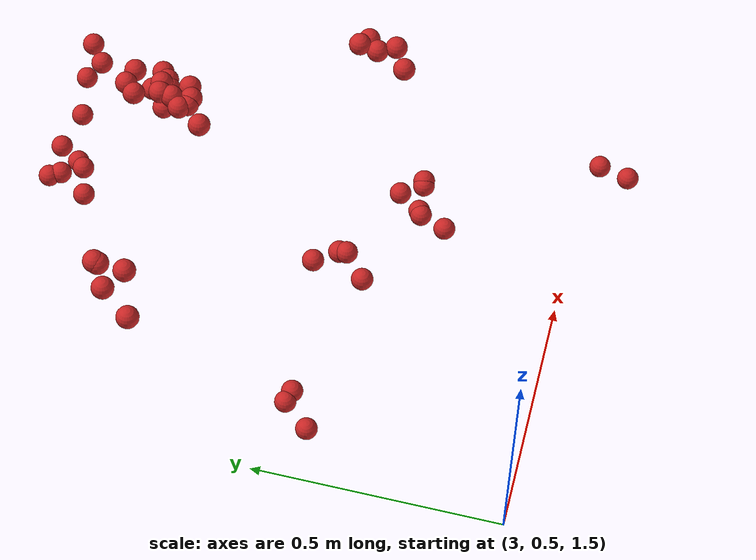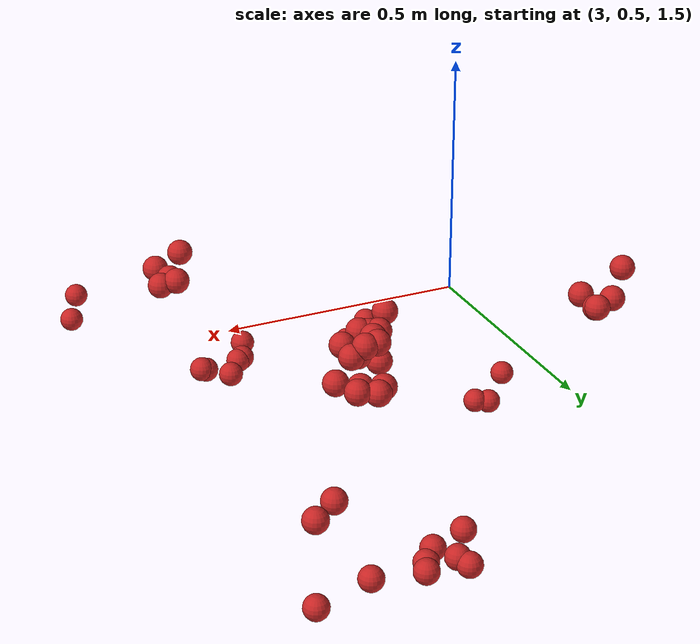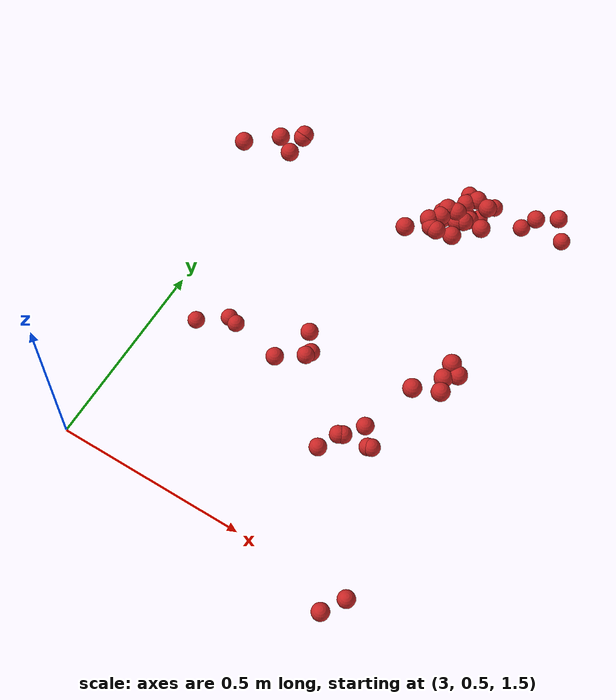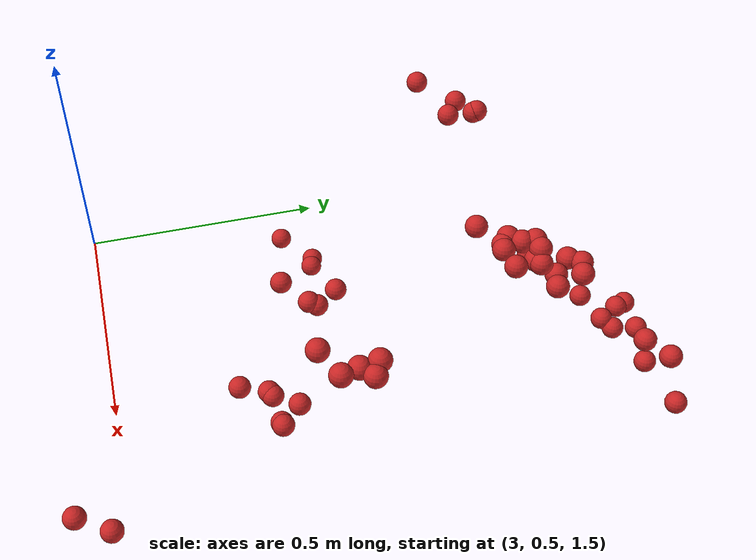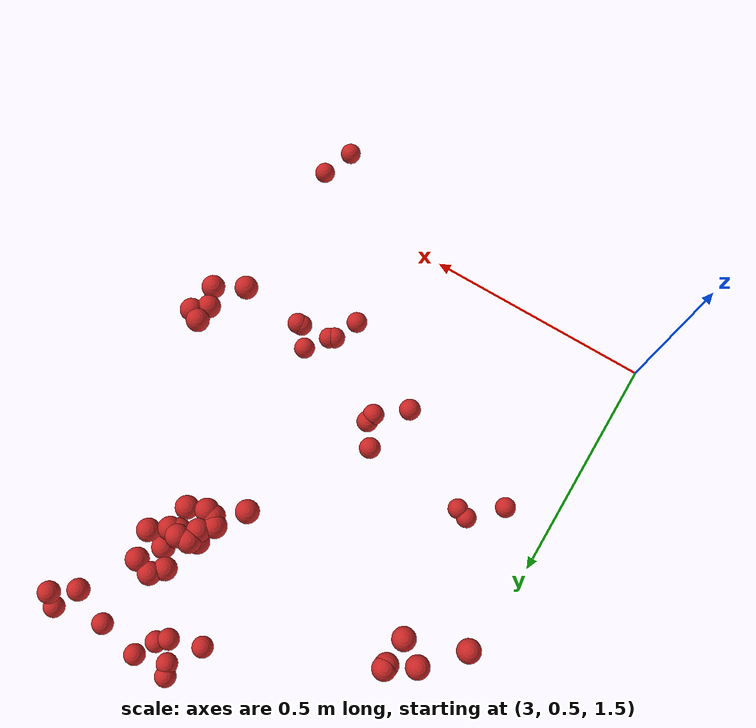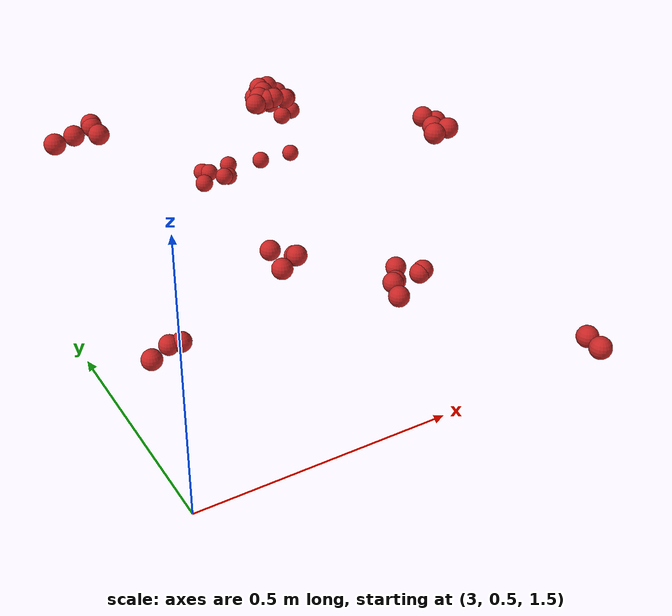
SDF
<sdf version="1.4">
 <model name="fruit_population">
  <static>true</static>
  <link name="fruit_17">
   <pose>3.5599760637592537 1.3184599635048513 1.8351153518897216 0 0 0</pose>
   <collision name="fruit_collision_17"><geometry><sphere><radius>0.022</radius></sphere></geometry></collision>
   <visual name="visual">
    <geometry><sphere><radius>0.022</radius></sphere></geometry>
    <material><script><name>Gazebo/Red</name></script></material>
   </visual>
   <inertial>
    <mass>0.05</mass>
    <inertia>
     <ixx>9.679999999999999e-06</ixx>
     <ixy>0.0</ixy>
     <ixz>0.0</ixz>
     <iyy>9.679999999999999e-06</iyy>
     <iyz>0.0</iyz>
     <izz>9.679999999999999e-06</izz>
    </inertia>
   </inertial>
   <sensor name="fruit_contact_17" type="contact">
    <plugin name="contact_plugin_17" filename="libcontact_plugin.so"/>
    <contact><collision>fruit_collision_17</collision><topic>fruit_contact_topic_17</topic></contact>
   </sensor>
  </link>
  <link name="fruit_27">
   <pose>3.1022276697385704 0.913973847272191 1.5187851328414521 0 0 0</pose>
   <collision name="fruit_collision_27"><geometry><sphere><radius>0.022</radius></sphere></geometry></collision>
   <visual name="visual">
    <geometry><sphere><radius>0.022</radius></sphere></geometry>
    <material><script><name>Gazebo/Red</name></script></material>
   </visual>
   <inertial>
    <mass>0.05</mass>
    <inertia>
     <ixx>9.679999999999999e-06</ixx>
     <ixy>0.0</ixy>
     <ixz>0.0</ixz>
     <iyy>9.679999999999999e-06</iyy>
     <iyz>0.0</iyz>
     <izz>9.679999999999999e-06</izz>
    </inertia>
   </inertial>
   <sensor name="fruit_contact_27" type="contact">
    <plugin name="contact_plugin_27" filename="libcontact_plugin.so"/>
    <contact><collision>fruit_collision_27</collision><topic>fruit_contact_topic_27</topic></contact>
   </sensor>
  </link>
  <link name="fruit_52">
   <pose>3.725238989129221 1.50672024667882 1.7184130196326435 0 0 0</pose>
   <collision name="fruit_collision_52"><geometry><sphere><radius>0.022</radius></sphere></geometry></collision>
   <visual name="visual">
    <geometry><sphere><radius>0.022</radius></sphere></geometry>
    <material><script><name>Gazebo/Red</name></script></material>
   </visual>
   <inertial>
    <mass>0.05</mass>
    <inertia>
     <ixx>9.679999999999999e-06</ixx>
     <ixy>0.0</ixy>
     <ixz>0.0</ixz>
     <iyy>9.679999999999999e-06</iyy>
     <iyz>0.0</iyz>
     <izz>9.679999999999999e-06</izz>
    </inertia>
   </inertial>
   <sensor name="fruit_contact_52" type="contact">
    <plugin name="contact_plugin_52" filename="libcontact_plugin.so"/>
    <contact><collision>fruit_collision_52</collision><topic>fruit_contact_topic_52</topic></contact>
   </sensor>
  </link>
  <link name="fruit_70">
   <pose>3.7349678941639186 0.8763590790599115 1.8763004661418001 0 0 0</pose>
   <collision name="fruit_collision_70"><geometry><sphere><radius>0.022</radius></sphere></geometry></collision>
   <visual name="visual">
    <geometry><sphere><radius>0.022</radius></sphere></geometry>
    <material><script><name>Gazebo/Red</name></script></material>
   </visual>
   <inertial>
    <mass>0.05</mass>
    <inertia>
     <ixx>9.679999999999999e-06</ixx>
     <ixy>0.0</ixy>
     <ixz>0.0</ixz>
     <iyy>9.679999999999999e-06</iyy>
     <iyz>0.0</iyz>
     <izz>9.679999999999999e-06</izz>
    </inertia>
   </inertial>
   <sensor name="fruit_contact_70" type="contact">
    <plugin name="contact_plugin_70" filename="libcontact_plugin.so"/>
    <contact><collision>fruit_collision_70</collision><topic>fruit_contact_topic_70</topic></contact>
   </sensor>
  </link>
  <link name="fruit_81">
   <pose>3.5073584684850196 1.229219751957037 1.8733460213204765 0 0 0</pose>
   <collision name="fruit_collision_81"><geometry><sphere><radius>0.022</radius></sphere></geometry></collision>
   <visual name="visual">
    <geometry><sphere><radius>0.022</radius></sphere></geometry>
    <material><script><name>Gazebo/Red</name></script></material>
   </visual>
   <inertial>
    <mass>0.05</mass>
    <inertia>
     <ixx>9.679999999999999e-06</ixx>
     <ixy>0.0</ixy>
     <ixz>0.0</ixz>
     <iyy>9.679999999999999e-06</iyy>
     <iyz>0.0</iyz>
     <izz>9.679999999999999e-06</izz>
    </inertia>
   </inertial>
   <sensor name="fruit_contact_81" type="contact">
    <plugin name="contact_plugin_81" filename="libcontact_plugin.so"/>
    <contact><collision>fruit_collision_81</collision><topic>fruit_contact_topic_81</topic></contact>
   </sensor>
  </link>
  <link name="fruit_103">
   <pose>3.6800370762477717 1.5466583099688562 1.5887252076262937 0 0 0</pose>
   <collision name="fruit_collision_103"><geometry><sphere><radius>0.022</radius></sphere></geometry></collision>
   <visual name="visual">
    <geometry><sphere><radius>0.022</radius></sphere></geometry>
    <material><script><name>Gazebo/Red</name></script></material>
   </visual>
   <inertial>
    <mass>0.05</mass>
    <inertia>
     <ixx>9.679999999999999e-06</ixx>
     <ixy>0.0</ixy>
     <ixz>0.0</ixz>
     <iyy>9.679999999999999e-06</iyy>
     <iyz>0.0</iyz>
     <izz>9.679999999999999e-06</izz>
    </inertia>
   </inertial>
   <sensor name="fruit_contact_103" type="contact">
    <plugin name="contact_plugin_103" filename="libcontact_plugin.so"/>
    <contact><collision>fruit_collision_103</collision><topic>fruit_contact_topic_103</topic></contact>
   </sensor>
  </link>
  <link name="fruit_105">
   <pose>3.7876365757614896 0.4128293330826816 1.5995284361854956 0 0 0</pose>
   <collision name="fruit_collision_105"><geometry><sphere><radius>0.022</radius></sphere></geometry></collision>
   <visual name="visual">
    <geometry><sphere><radius>0.022</radius></sphere></geometry>
    <material><script><name>Gazebo/Red</name></script></material>
   </visual>
   <inertial>
    <mass>0.05</mass>
    <inertia>
     <ixx>9.679999999999999e-06</ixx>
     <ixy>0.0</ixy>
     <ixz>0.0</ixz>
     <iyy>9.679999999999999e-06</iyy>
     <iyz>0.0</iyz>
     <izz>9.679999999999999e-06</izz>
    </inertia>
   </inertial>
   <sensor name="fruit_contact_105" type="contact">
    <plugin name="contact_plugin_105" filename="libcontact_plugin.so"/>
    <contact><collision>fruit_collision_105</collision><topic>fruit_contact_topic_105</topic></contact>
   </sensor>
  </link>
  <link name="fruit_106">
   <pose>3.5697741032733226 0.7480428157700884 1.6052648496955708 0 0 0</pose>
   <collision name="fruit_collision_106"><geometry><sphere><radius>0.022</radius></sphere></geometry></collision>
   <visual name="visual">
    <geometry><sphere><radius>0.022</radius></sphere></geometry>
    <material><script><name>Gazebo/Red</name></script></material>
   </visual>
   <inertial>
    <mass>0.05</mass>
    <inertia>
     <ixx>9.679999999999999e-06</ixx>
     <ixy>0.0</ixy>
     <ixz>0.0</ixz>
     <iyy>9.679999999999999e-06</iyy>
     <iyz>0.0</iyz>
     <izz>9.679999999999999e-06</izz>
    </inertia>
   </inertial>
   <sensor name="fruit_contact_106" type="contact">
    <plugin name="contact_plugin_106" filename="libcontact_plugin.so"/>
    <contact><collision>fruit_collision_106</collision><topic>fruit_contact_topic_106</topic></contact>
   </sensor>
  </link>
  <link name="fruit_109">
   <pose>3.3717302902737893 0.8701834800736336 1.6660403232979073 0 0 0</pose>
   <collision name="fruit_collision_109"><geometry><sphere><radius>0.022</radius></sphere></geometry></collision>
   <visual name="visual">
    <geometry><sphere><radius>0.022</radius></sphere></geometry>
    <material><script><name>Gazebo/Red</name></script></material>
   </visual>
   <inertial>
    <mass>0.05</mass>
    <inertia>
     <ixx>9.679999999999999e-06</ixx>
     <ixy>0.0</ixy>
     <ixz>0.0</ixz>
     <iyy>9.679999999999999e-06</iyy>
     <iyz>0.0</iyz>
     <izz>9.679999999999999e-06</izz>
    </inertia>
   </inertial>
   <sensor name="fruit_contact_109" type="contact">
    <plugin name="contact_plugin_109" filename="libcontact_plugin.so"/>
    <contact><collision>fruit_collision_109</collision><topic>fruit_contact_topic_109</topic></contact>
   </sensor>
  </link>
  <link name="fruit_113">
   <pose>3.4845235315363476 1.4815124395063197 1.5905172096511941 0 0 0</pose>
   <collision name="fruit_collision_113"><geometry><sphere><radius>0.022</radius></sphere></geometry></collision>
   <visual name="visual">
    <geometry><sphere><radius>0.022</radius></sphere></geometry>
    <material><script><name>Gazebo/Red</name></script></material>
   </visual>
   <inertial>
    <mass>0.05</mass>
    <inertia>
     <ixx>9.679999999999999e-06</ixx>
     <ixy>0.0</ixy>
     <ixz>0.0</ixz>
     <iyy>9.679999999999999e-06</iyy>
     <iyz>0.0</iyz>
     <izz>9.679999999999999e-06</izz>
    </inertia>
   </inertial>
   <sensor name="fruit_contact_113" type="contact">
    <plugin name="contact_plugin_113" filename="libcontact_plugin.so"/>
    <contact><collision>fruit_collision_113</collision><topic>fruit_contact_topic_113</topic></contact>
   </sensor>
  </link>
  <link name="fruit_155">
   <pose>3.0545938482336963 1.2349758930662846 1.8683440989289972 0 0 0</pose>
   <collision name="fruit_collision_155"><geometry><sphere><radius>0.022</radius></sphere></geometry></collision>
   <visual name="visual">
    <geometry><sphere><radius>0.022</radius></sphere></geometry>
    <material><script><name>Gazebo/Red</name></script></material>
   </visual>
   <inertial>
    <mass>0.05</mass>
    <inertia>
     <ixx>9.679999999999999e-06</ixx>
     <ixy>0.0</ixy>
     <ixz>0.0</ixz>
     <iyy>9.679999999999999e-06</iyy>
     <iyz>0.0</iyz>
     <izz>9.679999999999999e-06</izz>
    </inertia>
   </inertial>
   <sensor name="fruit_contact_155" type="contact">
    <plugin name="contact_plugin_155" filename="libcontact_plugin.so"/>
    <contact><collision>fruit_collision_155</collision><topic>fruit_contact_topic_155</topic></contact>
   </sensor>
  </link>
  <link name="fruit_186">
   <pose>3.6114209723589754 1.3573839148122655 1.8182603337929268 0 0 0</pose>
   <collision name="fruit_collision_186"><geometry><sphere><radius>0.022</radius></sphere></geometry></collision>
   <visual name="visual">
    <geometry><sphere><radius>0.022</radius></sphere></geometry>
    <material><script><name>Gazebo/Red</name></script></material>
   </visual>
   <inertial>
    <mass>0.05</mass>
    <inertia>
     <ixx>9.679999999999999e-06</ixx>
     <ixy>0.0</ixy>
     <ixz>0.0</ixz>
     <iyy>9.679999999999999e-06</iyy>
     <iyz>0.0</iyz>
     <izz>9.679999999999999e-06</izz>
    </inertia>
   </inertial>
   <sensor name="fruit_contact_186" type="contact">
    <plugin name="contact_plugin_186" filename="libcontact_plugin.so"/>
    <contact><collision>fruit_collision_186</collision><topic>fruit_contact_topic_186</topic></contact>
   </sensor>
  </link>
  <link name="fruit_228">
   <pose>3.6356028747627205 0.8539809406461127 1.6034993978267298 0 0 0</pose>
   <collision name="fruit_collision_228"><geometry><sphere><radius>0.022</radius></sphere></geometry></collision>
   <visual name="visual">
    <geometry><sphere><radius>0.022</radius></sphere></geometry>
    <material><script><name>Gazebo/Red</name></script></material>
   </visual>
   <inertial>
    <mass>0.05</mass>
    <inertia>
     <ixx>9.679999999999999e-06</ixx>
     <ixy>0.0</ixy>
     <ixz>0.0</ixz>
     <iyy>9.679999999999999e-06</iyy>
     <iyz>0.0</iyz>
     <izz>9.679999999999999e-06</izz>
    </inertia>
   </inertial>
   <sensor name="fruit_contact_228" type="contact">
    <plugin name="contact_plugin_228" filename="libcontact_plugin.so"/>
    <contact><collision>fruit_collision_228</collision><topic>fruit_contact_topic_228</topic></contact>
   </sensor>
  </link>
  <link name="fruit_247">
   <pose>3.5276375451452457 1.5446756215681081 1.586942484007275 0 0 0</pose>
   <collision name="fruit_collision_247"><geometry><sphere><radius>0.022</radius></sphere></geometry></collision>
   <visual name="visual">
    <geometry><sphere><radius>0.022</radius></sphere></geometry>
    <material><script><name>Gazebo/Red</name></script></material>
   </visual>
   <inertial>
    <mass>0.05</mass>
    <inertia>
     <ixx>9.679999999999999e-06</ixx>
     <ixy>0.0</ixy>
     <ixz>0.0</ixz>
     <iyy>9.679999999999999e-06</iyy>
     <iyz>0.0</iyz>
     <izz>9.679999999999999e-06</izz>
    </inertia>
   </inertial>
   <sensor name="fruit_contact_247" type="contact">
    <plugin name="contact_plugin_247" filename="libcontact_plugin.so"/>
    <contact><collision>fruit_collision_247</collision><topic>fruit_contact_topic_247</topic></contact>
   </sensor>
  </link>
  <link name="fruit_283">
   <pose>3.551066597485708 1.5040047193821826 1.5863158389191552 0 0 0</pose>
   <collision name="fruit_collision_283"><geometry><sphere><radius>0.022</radius></sphere></geometry></collision>
   <visual name="visual">
    <geometry><sphere><radius>0.022</radius></sphere></geometry>
    <material><script><name>Gazebo/Red</name></script></material>
   </visual>
   <inertial>
    <mass>0.05</mass>
    <inertia>
     <ixx>9.679999999999999e-06</ixx>
     <ixy>0.0</ixy>
     <ixz>0.0</ixz>
     <iyy>9.679999999999999e-06</iyy>
     <iyz>0.0</iyz>
     <izz>9.679999999999999e-06</izz>
    </inertia>
   </inertial>
   <sensor name="fruit_contact_283" type="contact">
    <plugin name="contact_plugin_283" filename="libcontact_plugin.so"/>
    <contact><collision>fruit_collision_283</collision><topic>fruit_contact_topic_283</topic></contact>
   </sensor>
  </link>
  <link name="fruit_293">
   <pose>3.604189467120068 1.4092340049424084 1.8306000198759065 0 0 0</pose>
   <collision name="fruit_collision_293"><geometry><sphere><radius>0.022</radius></sphere></geometry></collision>
   <visual name="visual">
    <geometry><sphere><radius>0.022</radius></sphere></geometry>
    <material><script><name>Gazebo/Red</name></script></material>
   </visual>
   <inertial>
    <mass>0.05</mass>
    <inertia>
     <ixx>9.679999999999999e-06</ixx>
     <ixy>0.0</ixy>
     <ixz>0.0</ixz>
     <iyy>9.679999999999999e-06</iyy>
     <iyz>0.0</iyz>
     <izz>9.679999999999999e-06</izz>
    </inertia>
   </inertial>
   <sensor name="fruit_contact_293" type="contact">
    <plugin name="contact_plugin_293" filename="libcontact_plugin.so"/>
    <contact><collision>fruit_collision_293</collision><topic>fruit_contact_topic_293</topic></contact>
   </sensor>
  </link>
  <link name="fruit_323">
   <pose>3.7713344247243907 1.5397559075399314 1.714170472555333 0 0 0</pose>
   <collision name="fruit_collision_323"><geometry><sphere><radius>0.022</radius></sphere></geometry></collision>
   <visual name="visual">
    <geometry><sphere><radius>0.022</radius></sphere></geometry>
    <material><script><name>Gazebo/Red</name></script></material>
   </visual>
   <inertial>
    <mass>0.05</mass>
    <inertia>
     <ixx>9.679999999999999e-06</ixx>
     <ixy>0.0</ixy>
     <ixz>0.0</ixz>
     <iyy>9.679999999999999e-06</iyy>
     <iyz>0.0</iyz>
     <izz>9.679999999999999e-06</izz>
    </inertia>
   </inertial>
   <sensor name="fruit_contact_323" type="contact">
    <plugin name="contact_plugin_323" filename="libcontact_plugin.so"/>
    <contact><collision>fruit_collision_323</collision><topic>fruit_contact_topic_323</topic></contact>
   </sensor>
  </link>
  <link name="fruit_334">
   <pose>3.6068218401383074 1.2768310443820712 1.8543630950863275 0 0 0</pose>
   <collision name="fruit_collision_334"><geometry><sphere><radius>0.022</radius></sphere></geometry></collision>
   <visual name="visual">
    <geometry><sphere><radius>0.022</radius></sphere></geometry>
    <material><script><name>Gazebo/Red</name></script></material>
   </visual>
   <inertial>
    <mass>0.05</mass>
    <inertia>
     <ixx>9.679999999999999e-06</ixx>
     <ixy>0.0</ixy>
     <ixz>0.0</ixz>
     <iyy>9.679999999999999e-06</iyy>
     <iyz>0.0</iyz>
     <izz>9.679999999999999e-06</izz>
    </inertia>
   </inertial>
   <sensor name="fruit_contact_334" type="contact">
    <plugin name="contact_plugin_334" filename="libcontact_plugin.so"/>
    <contact><collision>fruit_collision_334</collision><topic>fruit_contact_topic_334</topic></contact>
   </sensor>
  </link>
  <link name="fruit_361">
   <pose>3.667992396248071 0.812668866453949 1.5997302410704692 0 0 0</pose>
   <collision name="fruit_collision_361"><geometry><sphere><radius>0.022</radius></sphere></geometry></collision>
   <visual name="visual">
    <geometry><sphere><radius>0.022</radius></sphere></geometry>
    <material><script><name>Gazebo/Red</name></script></material>
   </visual>
   <inertial>
    <mass>0.05</mass>
    <inertia>
     <ixx>9.679999999999999e-06</ixx>
     <ixy>0.0</ixy>
     <ixz>0.0</ixz>
     <iyy>9.679999999999999e-06</iyy>
     <iyz>0.0</iyz>
     <izz>9.679999999999999e-06</izz>
    </inertia>
   </inertial>
   <sensor name="fruit_contact_361" type="contact">
    <plugin name="contact_plugin_361" filename="libcontact_plugin.so"/>
    <contact><collision>fruit_collision_361</collision><topic>fruit_contact_topic_361</topic></contact>
   </sensor>
  </link>
  <link name="fruit_414">
   <pose>3.784191516122022 1.5704074554547767 1.579309321135757 0 0 0</pose>
   <collision name="fruit_collision_414"><geometry><sphere><radius>0.022</radius></sphere></geometry></collision>
   <visual name="visual">
    <geometry><sphere><radius>0.022</radius></sphere></geometry>
    <material><script><name>Gazebo/Red</name></script></material>
   </visual>
   <inertial>
    <mass>0.05</mass>
    <inertia>
     <ixx>9.679999999999999e-06</ixx>
     <ixy>0.0</ixy>
     <ixz>0.0</ixz>
     <iyy>9.679999999999999e-06</iyy>
     <iyz>0.0</iyz>
     <izz>9.679999999999999e-06</izz>
    </inertia>
   </inertial>
   <sensor name="fruit_contact_414" type="contact">
    <plugin name="contact_plugin_414" filename="libcontact_plugin.so"/>
    <contact><collision>fruit_collision_414</collision><topic>fruit_contact_topic_414</topic></contact>
   </sensor>
  </link>
  <link name="fruit_421">
   <pose>3.649623285609672 1.346015057716625 1.8277048553113193 0 0 0</pose>
   <collision name="fruit_collision_421"><geometry><sphere><radius>0.022</radius></sphere></geometry></collision>
   <visual name="visual">
    <geometry><sphere><radius>0.022</radius></sphere></geometry>
    <material><script><name>Gazebo/Red</name></script></material>
   </visual>
   <inertial>
    <mass>0.05</mass>
    <inertia>
     <ixx>9.679999999999999e-06</ixx>
     <ixy>0.0</ixy>
     <ixz>0.0</ixz>
     <iyy>9.679999999999999e-06</iyy>
     <iyz>0.0</iyz>
     <izz>9.679999999999999e-06</izz>
    </inertia>
   </inertial>
   <sensor name="fruit_contact_421" type="contact">
    <plugin name="contact_plugin_421" filename="libcontact_plugin.so"/>
    <contact><collision>fruit_collision_421</collision><topic>fruit_contact_topic_421</topic></contact>
   </sensor>
  </link>
  <link name="fruit_445">
   <pose>3.6770091650036423 0.8142305655308208 1.6034793310609414 0 0 0</pose>
   <collision name="fruit_collision_445"><geometry><sphere><radius>0.022</radius></sphere></geometry></collision>
   <visual name="visual">
    <geometry><sphere><radius>0.022</radius></sphere></geometry>
    <material><script><name>Gazebo/Red</name></script></material>
   </visual>
   <inertial>
    <mass>0.05</mass>
    <inertia>
     <ixx>9.679999999999999e-06</ixx>
     <ixy>0.0</ixy>
     <ixz>0.0</ixz>
     <iyy>9.679999999999999e-06</iyy>
     <iyz>0.0</iyz>
     <izz>9.679999999999999e-06</izz>
    </inertia>
   </inertial>
   <sensor name="fruit_contact_445" type="contact">
    <plugin name="contact_plugin_445" filename="libcontact_plugin.so"/>
    <contact><collision>fruit_collision_445</collision><topic>fruit_contact_topic_445</topic></contact>
   </sensor>
  </link>
  <link name="fruit_448">
   <pose>3.1151986208741205 1.303097820275522 1.8517305223095086 0 0 0</pose>
   <collision name="fruit_collision_448"><geometry><sphere><radius>0.022</radius></sphere></geometry></collision>
   <visual name="visual">
    <geometry><sphere><radius>0.022</radius></sphere></geometry>
    <material><script><name>Gazebo/Red</name></script></material>
   </visual>
   <inertial>
    <mass>0.05</mass>
    <inertia>
     <ixx>9.679999999999999e-06</ixx>
     <ixy>0.0</ixy>
     <ixz>0.0</ixz>
     <iyy>9.679999999999999e-06</iyy>
     <iyz>0.0</iyz>
     <izz>9.679999999999999e-06</izz>
    </inertia>
   </inertial>
   <sensor name="fruit_contact_448" type="contact">
    <plugin name="contact_plugin_448" filename="libcontact_plugin.so"/>
    <contact><collision>fruit_collision_448</collision><topic>fruit_contact_topic_448</topic></contact>
   </sensor>
  </link>
  <link name="fruit_455">
   <pose>3.159608827060697 1.2743550607850016 1.8552459751163966 0 0 0</pose>
   <collision name="fruit_collision_455"><geometry><sphere><radius>0.022</radius></sphere></geometry></collision>
   <visual name="visual">
    <geometry><sphere><radius>0.022</radius></sphere></geometry>
    <material><script><name>Gazebo/Red</name></script></material>
   </visual>
   <inertial>
    <mass>0.05</mass>
    <inertia>
     <ixx>9.679999999999999e-06</ixx>
     <ixy>0.0</ixy>
     <ixz>0.0</ixz>
     <iyy>9.679999999999999e-06</iyy>
     <iyz>0.0</iyz>
     <izz>9.679999999999999e-06</izz>
    </inertia>
   </inertial>
   <sensor name="fruit_contact_455" type="contact">
    <plugin name="contact_plugin_455" filename="libcontact_plugin.so"/>
    <contact><collision>fruit_collision_455</collision><topic>fruit_contact_topic_455</topic></contact>
   </sensor>
  </link>
  <link name="fruit_458">
   <pose>3.1638761831982536 1.334597465514478 1.858198930373571 0 0 0</pose>
   <collision name="fruit_collision_458"><geometry><sphere><radius>0.022</radius></sphere></geometry></collision>
   <visual name="visual">
    <geometry><sphere><radius>0.022</radius></sphere></geometry>
    <material><script><name>Gazebo/Red</name></script></material>
   </visual>
   <inertial>
    <mass>0.05</mass>
    <inertia>
     <ixx>9.679999999999999e-06</ixx>
     <ixy>0.0</ixy>
     <ixz>0.0</ixz>
     <iyy>9.679999999999999e-06</iyy>
     <iyz>0.0</iyz>
     <izz>9.679999999999999e-06</izz>
    </inertia>
   </inertial>
   <sensor name="fruit_contact_458" type="contact">
    <plugin name="contact_plugin_458" filename="libcontact_plugin.so"/>
    <contact><collision>fruit_collision_458</collision><topic>fruit_contact_topic_458</topic></contact>
   </sensor>
  </link>
  <link name="fruit_462">
   <pose>3.7785061209823945 0.9762588243946789 1.8728364336009846 0 0 0</pose>
   <collision name="fruit_collision_462"><geometry><sphere><radius>0.022</radius></sphere></geometry></collision>
   <visual name="visual">
    <geometry><sphere><radius>0.022</radius></sphere></geometry>
    <material><script><name>Gazebo/Red</name></script></material>
   </visual>
   <inertial>
    <mass>0.05</mass>
    <inertia>
     <ixx>9.679999999999999e-06</ixx>
     <ixy>0.0</ixy>
     <ixz>0.0</ixz>
     <iyy>9.679999999999999e-06</iyy>
     <iyz>0.0</iyz>
     <izz>9.679999999999999e-06</izz>
    </inertia>
   </inertial>
   <sensor name="fruit_contact_462" type="contact">
    <plugin name="contact_plugin_462" filename="libcontact_plugin.so"/>
    <contact><collision>fruit_collision_462</collision><topic>fruit_contact_topic_462</topic></contact>
   </sensor>
  </link>
  <link name="fruit_463">
   <pose>3.5666861155028062 1.3260287577742798 1.873310350395646 0 0 0</pose>
   <collision name="fruit_collision_463"><geometry><sphere><radius>0.022</radius></sphere></geometry></collision>
   <visual name="visual">
    <geometry><sphere><radius>0.022</radius></sphere></geometry>
    <material><script><name>Gazebo/Red</name></script></material>
   </visual>
   <inertial>
    <mass>0.05</mass>
    <inertia>
     <ixx>9.679999999999999e-06</ixx>
     <ixy>0.0</ixy>
     <ixz>0.0</ixz>
     <iyy>9.679999999999999e-06</iyy>
     <iyz>0.0</iyz>
     <izz>9.679999999999999e-06</izz>
    </inertia>
   </inertial>
   <sensor name="fruit_contact_463" type="contact">
    <plugin name="contact_plugin_463" filename="libcontact_plugin.so"/>
    <contact><collision>fruit_collision_463</collision><topic>fruit_contact_topic_463</topic></contact>
   </sensor>
  </link>
  <link name="fruit_480">
   <pose>3.791070881238205 0.9048251055536218 1.8681193417988038 0 0 0</pose>
   <collision name="fruit_collision_480"><geometry><sphere><radius>0.022</radius></sphere></geometry></collision>
   <visual name="visual">
    <geometry><sphere><radius>0.022</radius></sphere></geometry>
    <material><script><name>Gazebo/Red</name></script></material>
   </visual>
   <inertial>
    <mass>0.05</mass>
    <inertia>
     <ixx>9.679999999999999e-06</ixx>
     <ixy>0.0</ixy>
     <ixz>0.0</ixz>
     <iyy>9.679999999999999e-06</iyy>
     <iyz>0.0</iyz>
     <izz>9.679999999999999e-06</izz>
    </inertia>
   </inertial>
   <sensor name="fruit_contact_480" type="contact">
    <plugin name="contact_plugin_480" filename="libcontact_plugin.so"/>
    <contact><collision>fruit_collision_480</collision><topic>fruit_contact_topic_480</topic></contact>
   </sensor>
  </link>
  <link name="fruit_482">
   <pose>3.6117423054502718 1.3239982511285553 1.8559224730060242 0 0 0</pose>
   <collision name="fruit_collision_482"><geometry><sphere><radius>0.022</radius></sphere></geometry></collision>
   <visual name="visual">
    <geometry><sphere><radius>0.022</radius></sphere></geometry>
    <material><script><name>Gazebo/Red</name></script></material>
   </visual>
   <inertial>
    <mass>0.05</mass>
    <inertia>
     <ixx>9.679999999999999e-06</ixx>
     <ixy>0.0</ixy>
     <ixz>0.0</ixz>
     <iyy>9.679999999999999e-06</iyy>
     <iyz>0.0</iyz>
     <izz>9.679999999999999e-06</izz>
    </inertia>
   </inertial>
   <sensor name="fruit_contact_482" type="contact">
    <plugin name="contact_plugin_482" filename="libcontact_plugin.so"/>
    <contact><collision>fruit_collision_482</collision><topic>fruit_contact_topic_482</topic></contact>
   </sensor>
  </link>
  <link name="fruit_491">
   <pose>3.5896866848413365 1.328772148046778 1.872739203909709 0 0 0</pose>
   <collision name="fruit_collision_491"><geometry><sphere><radius>0.022</radius></sphere></geometry></collision>
   <visual name="visual">
    <geometry><sphere><radius>0.022</radius></sphere></geometry>
    <material><script><name>Gazebo/Red</name></script></material>
   </visual>
   <inertial>
    <mass>0.05</mass>
    <inertia>
     <ixx>9.679999999999999e-06</ixx>
     <ixy>0.0</ixy>
     <ixz>0.0</ixz>
     <iyy>9.679999999999999e-06</iyy>
     <iyz>0.0</iyz>
     <izz>9.679999999999999e-06</izz>
    </inertia>
   </inertial>
   <sensor name="fruit_contact_491" type="contact">
    <plugin name="contact_plugin_491" filename="libcontact_plugin.so"/>
    <contact><collision>fruit_collision_491</collision><topic>fruit_contact_topic_491</topic></contact>
   </sensor>
  </link>
  <link name="fruit_501">
   <pose>3.5711851722386254 1.2635117033954355 1.8665158963400652 0 0 0</pose>
   <collision name="fruit_collision_501"><geometry><sphere><radius>0.022</radius></sphere></geometry></collision>
   <visual name="visual">
    <geometry><sphere><radius>0.022</radius></sphere></geometry>
    <material><script><name>Gazebo/Red</name></script></material>
   </visual>
   <inertial>
    <mass>0.05</mass>
    <inertia>
     <ixx>9.679999999999999e-06</ixx>
     <ixy>0.0</ixy>
     <ixz>0.0</ixz>
     <iyy>9.679999999999999e-06</iyy>
     <iyz>0.0</iyz>
     <izz>9.679999999999999e-06</izz>
    </inertia>
   </inertial>
   <sensor name="fruit_contact_501" type="contact">
    <plugin name="contact_plugin_501" filename="libcontact_plugin.so"/>
    <contact><collision>fruit_collision_501</collision><topic>fruit_contact_topic_501</topic></contact>
   </sensor>
  </link>
  <link name="fruit_502">
   <pose>3.1631193497726255 1.3276359231633679 1.8549500279336617 0 0 0</pose>
   <collision name="fruit_collision_502"><geometry><sphere><radius>0.022</radius></sphere></geometry></collision>
   <visual name="visual">
    <geometry><sphere><radius>0.022</radius></sphere></geometry>
    <material><script><name>Gazebo/Red</name></script></material>
   </visual>
   <inertial>
    <mass>0.05</mass>
    <inertia>
     <ixx>9.679999999999999e-06</ixx>
     <ixy>0.0</ixy>
     <ixz>0.0</ixz>
     <iyy>9.679999999999999e-06</iyy>
     <iyz>0.0</iyz>
     <izz>9.679999999999999e-06</izz>
    </inertia>
   </inertial>
   <sensor name="fruit_contact_502" type="contact">
    <plugin name="contact_plugin_502" filename="libcontact_plugin.so"/>
    <contact><collision>fruit_collision_502</collision><topic>fruit_contact_topic_502</topic></contact>
   </sensor>
  </link>
  <link name="fruit_523">
   <pose>3.8179310685010335 0.4742008899633997 1.58045440196731 0 0 0</pose>
   <collision name="fruit_collision_523"><geometry><sphere><radius>0.022</radius></sphere></geometry></collision>
   <visual name="visual">
    <geometry><sphere><radius>0.022</radius></sphere></geometry>
    <material><script><name>Gazebo/Red</name></script></material>
   </visual>
   <inertial>
    <mass>0.05</mass>
    <inertia>
     <ixx>9.679999999999999e-06</ixx>
     <ixy>0.0</ixy>
     <ixz>0.0</ixz>
     <iyy>9.679999999999999e-06</iyy>
     <iyz>0.0</iyz>
     <izz>9.679999999999999e-06</izz>
    </inertia>
   </inertial>
   <sensor name="fruit_contact_523" type="contact">
    <plugin name="contact_plugin_523" filename="libcontact_plugin.so"/>
    <contact><collision>fruit_collision_523</collision><topic>fruit_contact_topic_523</topic></contact>
   </sensor>
  </link>
  <link name="fruit_547">
   <pose>3.1869916165601904 0.9653064555187797 1.5030113926627306 0 0 0</pose>
   <collision name="fruit_collision_547"><geometry><sphere><radius>0.022</radius></sphere></geometry></collision>
   <visual name="visual">
    <geometry><sphere><radius>0.022</radius></sphere></geometry>
    <material><script><name>Gazebo/Red</name></script></material>
   </visual>
   <inertial>
    <mass>0.05</mass>
    <inertia>
     <ixx>9.679999999999999e-06</ixx>
     <ixy>0.0</ixy>
     <ixz>0.0</ixz>
     <iyy>9.679999999999999e-06</iyy>
     <iyz>0.0</iyz>
     <izz>9.679999999999999e-06</izz>
    </inertia>
   </inertial>
   <sensor name="fruit_contact_547" type="contact">
    <plugin name="contact_plugin_547" filename="libcontact_plugin.so"/>
    <contact><collision>fruit_collision_547</collision><topic>fruit_contact_topic_547</topic></contact>
   </sensor>
  </link>
  <link name="fruit_552">
   <pose>3.401937630554914 0.9769358003683095 1.6505057378787071 0 0 0</pose>
   <collision name="fruit_collision_552"><geometry><sphere><radius>0.022</radius></sphere></geometry></collision>
   <visual name="visual">
    <geometry><sphere><radius>0.022</radius></sphere></geometry>
    <material><script><name>Gazebo/Red</name></script></material>
   </visual>
   <inertial>
    <mass>0.05</mass>
    <inertia>
     <ixx>9.679999999999999e-06</ixx>
     <ixy>0.0</ixy>
     <ixz>0.0</ixz>
     <iyy>9.679999999999999e-06</iyy>
     <iyz>0.0</iyz>
     <izz>9.679999999999999e-06</izz>
    </inertia>
   </inertial>
   <sensor name="fruit_contact_552" type="contact">
    <plugin name="contact_plugin_552" filename="libcontact_plugin.so"/>
    <contact><collision>fruit_collision_552</collision><topic>fruit_contact_topic_552</topic></contact>
   </sensor>
  </link>
  <link name="fruit_555">
   <pose>3.5849854372221808 1.3881442646228639 1.8275780512408548 0 0 0</pose>
   <collision name="fruit_collision_555"><geometry><sphere><radius>0.022</radius></sphere></geometry></collision>
   <visual name="visual">
    <geometry><sphere><radius>0.022</radius></sphere></geometry>
    <material><script><name>Gazebo/Red</name></script></material>
   </visual>
   <inertial>
    <mass>0.05</mass>
    <inertia>
     <ixx>9.679999999999999e-06</ixx>
     <ixy>0.0</ixy>
     <ixz>0.0</ixz>
     <iyy>9.679999999999999e-06</iyy>
     <iyz>0.0</iyz>
     <izz>9.679999999999999e-06</izz>
    </inertia>
   </inertial>
   <sensor name="fruit_contact_555" type="contact">
    <plugin name="contact_plugin_555" filename="libcontact_plugin.so"/>
    <contact><collision>fruit_collision_555</collision><topic>fruit_contact_topic_555</topic></contact>
   </sensor>
  </link>
  <link name="fruit_558">
   <pose>3.5924920806144005 0.8016933840850083 1.6039191453958896 0 0 0</pose>
   <collision name="fruit_collision_558"><geometry><sphere><radius>0.022</radius></sphere></geometry></collision>
   <visual name="visual">
    <geometry><sphere><radius>0.022</radius></sphere></geometry>
    <material><script><name>Gazebo/Red</name></script></material>
   </visual>
   <inertial>
    <mass>0.05</mass>
    <inertia>
     <ixx>9.679999999999999e-06</ixx>
     <ixy>0.0</ixy>
     <ixz>0.0</ixz>
     <iyy>9.679999999999999e-06</iyy>
     <iyz>0.0</iyz>
     <izz>9.679999999999999e-06</izz>
    </inertia>
   </inertial>
   <sensor name="fruit_contact_558" type="contact">
    <plugin name="contact_plugin_558" filename="libcontact_plugin.so"/>
    <contact><collision>fruit_collision_558</collision><topic>fruit_contact_topic_558</topic></contact>
   </sensor>
  </link>
  <link name="fruit_570">
   <pose>3.571934467341706 1.5219727664861884 1.5754660587870166 0 0 0</pose>
   <collision name="fruit_collision_570"><geometry><sphere><radius>0.022</radius></sphere></geometry></collision>
   <visual name="visual">
    <geometry><sphere><radius>0.022</radius></sphere></geometry>
    <material><script><name>Gazebo/Red</name></script></material>
   </visual>
   <inertial>
    <mass>0.05</mass>
    <inertia>
     <ixx>9.679999999999999e-06</ixx>
     <ixy>0.0</ixy>
     <ixz>0.0</ixz>
     <iyy>9.679999999999999e-06</iyy>
     <iyz>0.0</iyz>
     <izz>9.679999999999999e-06</izz>
    </inertia>
   </inertial>
   <sensor name="fruit_contact_570" type="contact">
    <plugin name="contact_plugin_570" filename="libcontact_plugin.so"/>
    <contact><collision>fruit_collision_570</collision><topic>fruit_contact_topic_570</topic></contact>
   </sensor>
  </link>
  <link name="fruit_582">
   <pose>3.4303420678241108 0.9155737679451088 1.6590839202413266 0 0 0</pose>
   <collision name="fruit_collision_582"><geometry><sphere><radius>0.022</radius></sphere></geometry></collision>
   <visual name="visual">
    <geometry><sphere><radius>0.022</radius></sphere></geometry>
    <material><script><name>Gazebo/Red</name></script></material>
   </visual>
   <inertial>
    <mass>0.05</mass>
    <inertia>
     <ixx>9.679999999999999e-06</ixx>
     <ixy>0.0</ixy>
     <ixz>0.0</ixz>
     <iyy>9.679999999999999e-06</iyy>
     <iyz>0.0</iyz>
     <izz>9.679999999999999e-06</izz>
    </inertia>
   </inertial>
   <sensor name="fruit_contact_582" type="contact">
    <plugin name="contact_plugin_582" filename="libcontact_plugin.so"/>
    <contact><collision>fruit_collision_582</collision><topic>fruit_contact_topic_582</topic></contact>
   </sensor>
  </link>
  <link name="fruit_583">
   <pose>3.5175563790874285 1.5669172168255963 1.5826495620001166 0 0 0</pose>
   <collision name="fruit_collision_583"><geometry><sphere><radius>0.022</radius></sphere></geometry></collision>
   <visual name="visual">
    <geometry><sphere><radius>0.022</radius></sphere></geometry>
    <material><script><name>Gazebo/Red</name></script></material>
   </visual>
   <inertial>
    <mass>0.05</mass>
    <inertia>
     <ixx>9.679999999999999e-06</ixx>
     <ixy>0.0</ixy>
     <ixz>0.0</ixz>
     <iyy>9.679999999999999e-06</iyy>
     <iyz>0.0</iyz>
     <izz>9.679999999999999e-06</izz>
    </inertia>
   </inertial>
   <sensor name="fruit_contact_583" type="contact">
    <plugin name="contact_plugin_583" filename="libcontact_plugin.so"/>
    <contact><collision>fruit_collision_583</collision><topic>fruit_contact_topic_583</topic></contact>
   </sensor>
  </link>
  <link name="fruit_626">
   <pose>3.5976711180027507 1.3179200931993924 1.8525424934777612 0 0 0</pose>
   <collision name="fruit_collision_626"><geometry><sphere><radius>0.022</radius></sphere></geometry></collision>
   <visual name="visual">
    <geometry><sphere><radius>0.022</radius></sphere></geometry>
    <material><script><name>Gazebo/Red</name></script></material>
   </visual>
   <inertial>
    <mass>0.05</mass>
    <inertia>
     <ixx>9.679999999999999e-06</ixx>
     <ixy>0.0</ixy>
     <ixz>0.0</ixz>
     <iyy>9.679999999999999e-06</iyy>
     <iyz>0.0</iyz>
     <izz>9.679999999999999e-06</izz>
    </inertia>
   </inertial>
   <sensor name="fruit_contact_626" type="contact">
    <plugin name="contact_plugin_626" filename="libcontact_plugin.so"/>
    <contact><collision>fruit_collision_626</collision><topic>fruit_contact_topic_626</topic></contact>
   </sensor>
  </link>
  <link name="fruit_639">
   <pose>3.7784197537362223 0.940214217445869 1.86259056709398 0 0 0</pose>
   <collision name="fruit_collision_639"><geometry><sphere><radius>0.022</radius></sphere></geometry></collision>
   <visual name="visual">
    <geometry><sphere><radius>0.022</radius></sphere></geometry>
    <material><script><name>Gazebo/Red</name></script></material>
   </visual>
   <inertial>
    <mass>0.05</mass>
    <inertia>
     <ixx>9.679999999999999e-06</ixx>
     <ixy>0.0</ixy>
     <ixz>0.0</ixz>
     <iyy>9.679999999999999e-06</iyy>
     <iyz>0.0</iyz>
     <izz>9.679999999999999e-06</izz>
    </inertia>
   </inertial>
   <sensor name="fruit_contact_639" type="contact">
    <plugin name="contact_plugin_639" filename="libcontact_plugin.so"/>
    <contact><collision>fruit_collision_639</collision><topic>fruit_contact_topic_639</topic></contact>
   </sensor>
  </link>
  <link name="fruit_642">
   <pose>3.5428658749321533 1.2804956621213393 1.868456074310672 0 0 0</pose>
   <collision name="fruit_collision_642"><geometry><sphere><radius>0.022</radius></sphere></geometry></collision>
   <visual name="visual">
    <geometry><sphere><radius>0.022</radius></sphere></geometry>
    <material><script><name>Gazebo/Red</name></script></material>
   </visual>
   <inertial>
    <mass>0.05</mass>
    <inertia>
     <ixx>9.679999999999999e-06</ixx>
     <ixy>0.0</ixy>
     <ixz>0.0</ixz>
     <iyy>9.679999999999999e-06</iyy>
     <iyz>0.0</iyz>
     <izz>9.679999999999999e-06</izz>
    </inertia>
   </inertial>
   <sensor name="fruit_contact_642" type="contact">
    <plugin name="contact_plugin_642" filename="libcontact_plugin.so"/>
    <contact><collision>fruit_collision_642</collision><topic>fruit_contact_topic_642</topic></contact>
   </sensor>
  </link>
  <link name="fruit_653">
   <pose>3.1622053198609 0.972680992888577 1.4997757974341812 0 0 0</pose>
   <collision name="fruit_collision_653"><geometry><sphere><radius>0.022</radius></sphere></geometry></collision>
   <visual name="visual">
    <geometry><sphere><radius>0.022</radius></sphere></geometry>
    <material><script><name>Gazebo/Red</name></script></material>
   </visual>
   <inertial>
    <mass>0.05</mass>
    <inertia>
     <ixx>9.679999999999999e-06</ixx>
     <ixy>0.0</ixy>
     <ixz>0.0</ixz>
     <iyy>9.679999999999999e-06</iyy>
     <iyz>0.0</iyz>
     <izz>9.679999999999999e-06</izz>
    </inertia>
   </inertial>
   <sensor name="fruit_contact_653" type="contact">
    <plugin name="contact_plugin_653" filename="libcontact_plugin.so"/>
    <contact><collision>fruit_collision_653</collision><topic>fruit_contact_topic_653</topic></contact>
   </sensor>
  </link>
  <link name="fruit_670">
   <pose>3.5558836079583713 1.266927777567676 1.8639173555235693 0 0 0</pose>
   <collision name="fruit_collision_670"><geometry><sphere><radius>0.022</radius></sphere></geometry></collision>
   <visual name="visual">
    <geometry><sphere><radius>0.022</radius></sphere></geometry>
    <material><script><name>Gazebo/Red</name></script></material>
   </visual>
   <inertial>
    <mass>0.05</mass>
    <inertia>
     <ixx>9.679999999999999e-06</ixx>
     <ixy>0.0</ixy>
     <ixz>0.0</ixz>
     <iyy>9.679999999999999e-06</iyy>
     <iyz>0.0</iyz>
     <izz>9.679999999999999e-06</izz>
    </inertia>
   </inertial>
   <sensor name="fruit_contact_670" type="contact">
    <plugin name="contact_plugin_670" filename="libcontact_plugin.so"/>
    <contact><collision>fruit_collision_670</collision><topic>fruit_contact_topic_670</topic></contact>
   </sensor>
  </link>
  <link name="fruit_704">
   <pose>3.563235700963185 1.3012738217522337 1.8717771624329886 0 0 0</pose>
   <collision name="fruit_collision_704"><geometry><sphere><radius>0.022</radius></sphere></geometry></collision>
   <visual name="visual">
    <geometry><sphere><radius>0.022</radius></sphere></geometry>
    <material><script><name>Gazebo/Red</name></script></material>
   </visual>
   <inertial>
    <mass>0.05</mass>
    <inertia>
     <ixx>9.679999999999999e-06</ixx>
     <ixy>0.0</ixy>
     <ixz>0.0</ixz>
     <iyy>9.679999999999999e-06</iyy>
     <iyz>0.0</iyz>
     <izz>9.679999999999999e-06</izz>
    </inertia>
   </inertial>
   <sensor name="fruit_contact_704" type="contact">
    <plugin name="contact_plugin_704" filename="libcontact_plugin.so"/>
    <contact><collision>fruit_collision_704</collision><topic>fruit_contact_topic_704</topic></contact>
   </sensor>
  </link>
  <link name="fruit_718">
   <pose>3.592085980509828 1.5631090148830056 1.588110049361944 0 0 0</pose>
   <collision name="fruit_collision_718"><geometry><sphere><radius>0.022</radius></sphere></geometry></collision>
   <visual name="visual">
    <geometry><sphere><radius>0.022</radius></sphere></geometry>
    <material><script><name>Gazebo/Red</name></script></material>
   </visual>
   <inertial>
    <mass>0.05</mass>
    <inertia>
     <ixx>9.679999999999999e-06</ixx>
     <ixy>0.0</ixy>
     <ixz>0.0</ixz>
     <iyy>9.679999999999999e-06</iyy>
     <iyz>0.0</iyz>
     <izz>9.679999999999999e-06</izz>
    </inertia>
   </inertial>
   <sensor name="fruit_contact_718" type="contact">
    <plugin name="contact_plugin_718" filename="libcontact_plugin.so"/>
    <contact><collision>fruit_collision_718</collision><topic>fruit_contact_topic_718</topic></contact>
   </sensor>
  </link>
  <link name="fruit_728">
   <pose>3.6359059299397 1.3995107452603428 1.8343560176680735 0 0 0</pose>
   <collision name="fruit_collision_728"><geometry><sphere><radius>0.022</radius></sphere></geometry></collision>
   <visual name="visual">
    <geometry><sphere><radius>0.022</radius></sphere></geometry>
    <material><script><name>Gazebo/Red</name></script></material>
   </visual>
   <inertial>
    <mass>0.05</mass>
    <inertia>
     <ixx>9.679999999999999e-06</ixx>
     <ixy>0.0</ixy>
     <ixz>0.0</ixz>
     <iyy>9.679999999999999e-06</iyy>
     <iyz>0.0</iyz>
     <izz>9.679999999999999e-06</izz>
    </inertia>
   </inertial>
   <sensor name="fruit_contact_728" type="contact">
    <plugin name="contact_plugin_728" filename="libcontact_plugin.so"/>
    <contact><collision>fruit_collision_728</collision><topic>fruit_contact_topic_728</topic></contact>
   </sensor>
  </link>
  <link name="fruit_742">
   <pose>3.8026540429190208 0.9627054872304464 1.8630690820626432 0 0 0</pose>
   <collision name="fruit_collision_742"><geometry><sphere><radius>0.022</radius></sphere></geometry></collision>
   <visual name="visual">
    <geometry><sphere><radius>0.022</radius></sphere></geometry>
    <material><script><name>Gazebo/Red</name></script></material>
   </visual>
   <inertial>
    <mass>0.05</mass>
    <inertia>
     <ixx>9.679999999999999e-06</ixx>
     <ixy>0.0</ixy>
     <ixz>0.0</ixz>
     <iyy>9.679999999999999e-06</iyy>
     <iyz>0.0</iyz>
     <izz>9.679999999999999e-06</izz>
    </inertia>
   </inertial>
   <sensor name="fruit_contact_742" type="contact">
    <plugin name="contact_plugin_742" filename="libcontact_plugin.so"/>
    <contact><collision>fruit_collision_742</collision><topic>fruit_contact_topic_742</topic></contact>
   </sensor>
  </link>
  <link name="fruit_751">
   <pose>3.602605681756713 0.8074248314139758 1.6024769605667706 0 0 0</pose>
   <collision name="fruit_collision_751"><geometry><sphere><radius>0.022</radius></sphere></geometry></collision>
   <visual name="visual">
    <geometry><sphere><radius>0.022</radius></sphere></geometry>
    <material><script><name>Gazebo/Red</name></script></material>
   </visual>
   <inertial>
    <mass>0.05</mass>
    <inertia>
     <ixx>9.679999999999999e-06</ixx>
     <ixy>0.0</ixy>
     <ixz>0.0</ixz>
     <iyy>9.679999999999999e-06</iyy>
     <iyz>0.0</iyz>
     <izz>9.679999999999999e-06</izz>
    </inertia>
   </inertial>
   <sensor name="fruit_contact_751" type="contact">
    <plugin name="contact_plugin_751" filename="libcontact_plugin.so"/>
    <contact><collision>fruit_collision_751</collision><topic>fruit_contact_topic_751</topic></contact>
   </sensor>
  </link>
  <link name="fruit_795">
   <pose>3.4345974684557117 0.9319922886726258 1.649935387864748 0 0 0</pose>
   <collision name="fruit_collision_795"><geometry><sphere><radius>0.022</radius></sphere></geometry></collision>
   <visual name="visual">
    <geometry><sphere><radius>0.022</radius></sphere></geometry>
    <material><script><name>Gazebo/Red</name></script></material>
   </visual>
   <inertial>
    <mass>0.05</mass>
    <inertia>
     <ixx>9.679999999999999e-06</ixx>
     <ixy>0.0</ixy>
     <ixz>0.0</ixz>
     <iyy>9.679999999999999e-06</iyy>
     <iyz>0.0</iyz>
     <izz>9.679999999999999e-06</izz>
    </inertia>
   </inertial>
   <sensor name="fruit_contact_795" type="contact">
    <plugin name="contact_plugin_795" filename="libcontact_plugin.so"/>
    <contact><collision>fruit_collision_795</collision><topic>fruit_contact_topic_795</topic></contact>
   </sensor>
  </link>
 </model>
</sdf>
